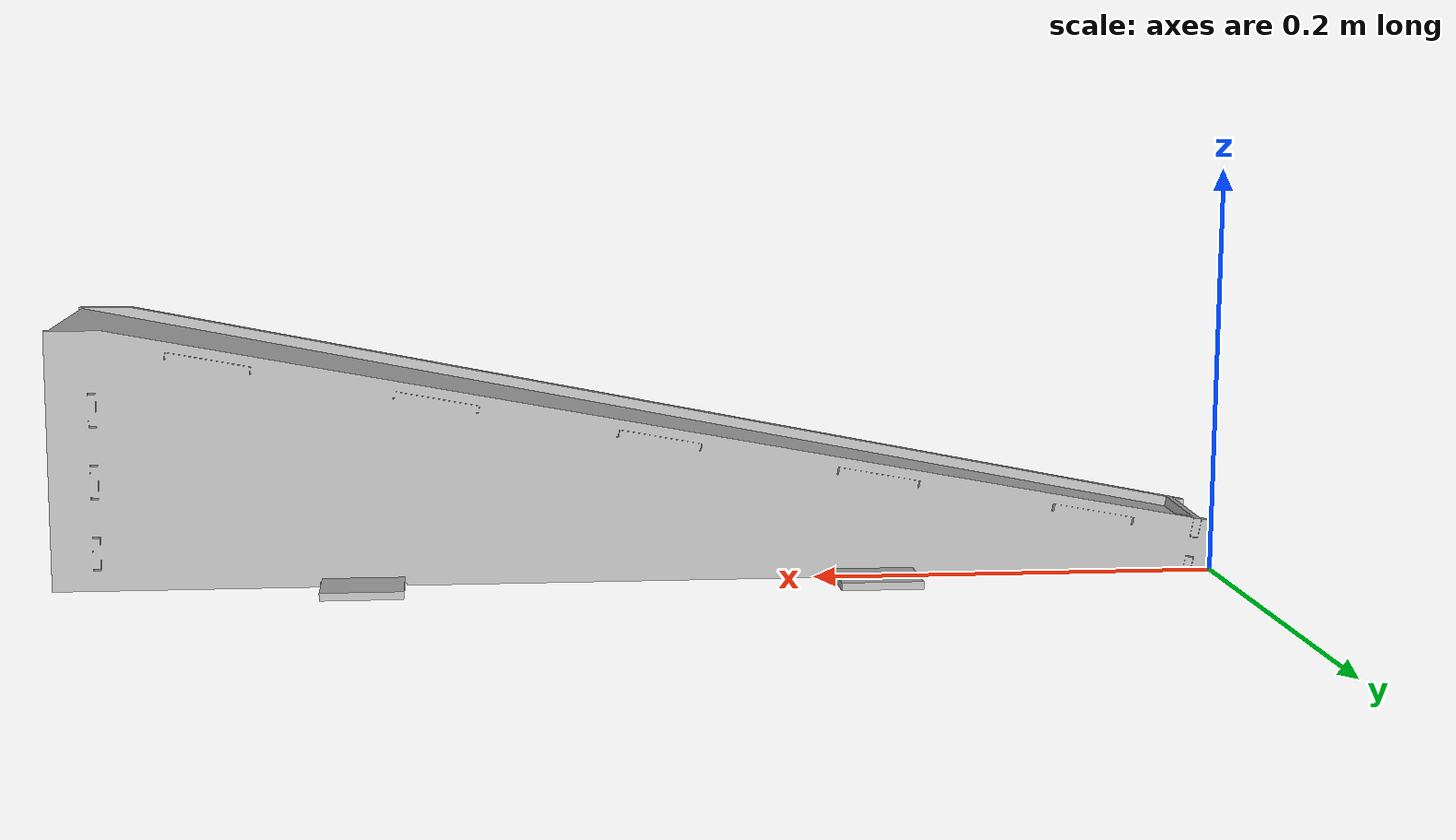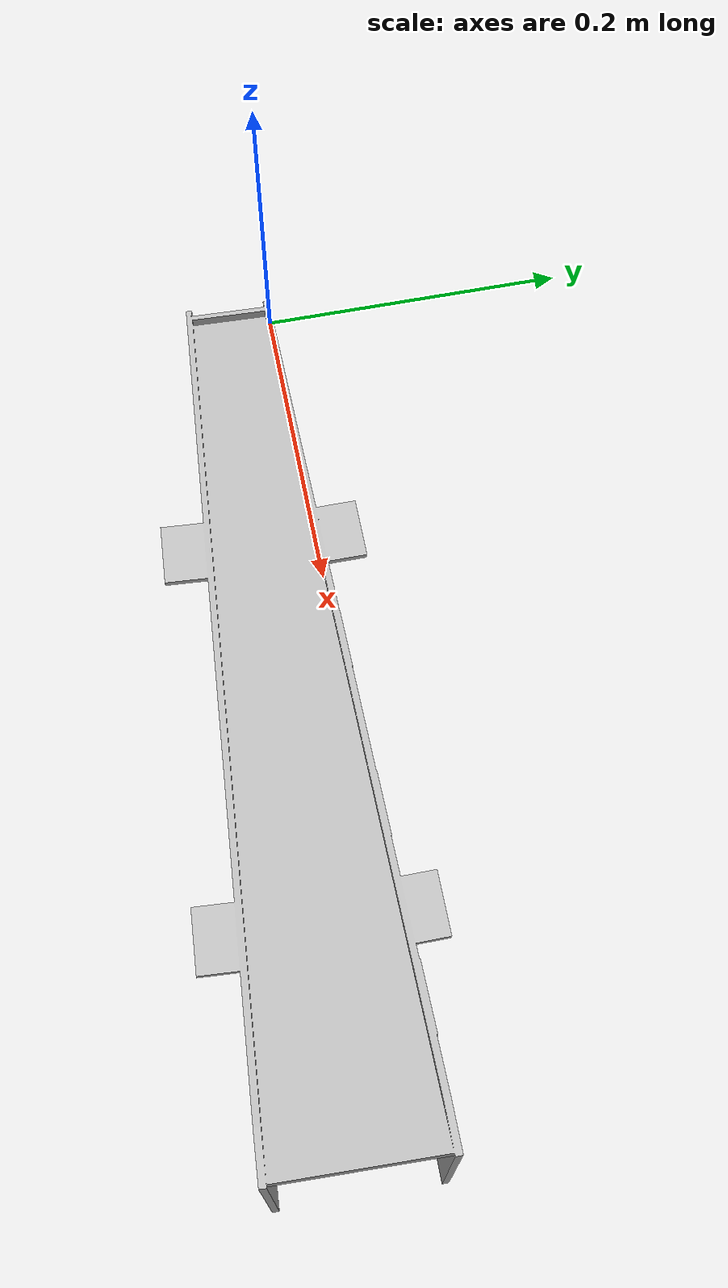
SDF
<?xml version="1.0" ?>
<sdf version="1.6">
  <model name="slide_long">
    <static>true</static>
    <link name="link">
      <inertial>
      	<mass>1.0</mass>
      </inertial>
      <collision name="collision">
        <pose>0 0 0 1.57079632679 0 0</pose>
        <geometry>
          <mesh>
            <uri>model://slide_long/meshes/slide_long.obj</uri>
          </mesh>
        </geometry>
	<surface>
         <friction>
           <ode>
             <mu>0.16</mu>
             <mu2>0.16</mu2>
           </ode>
         </friction>
      	</surface>
      </collision>
      <visual name="visual">
        <pose>0 0 0 1.57079632679 0 0</pose>
        <geometry>
          <mesh>
            <uri>model://slide_long/meshes/slide_long.obj</uri>
          </mesh>
        </geometry>
      </visual>
    </link>
  </model>
</sdf>
